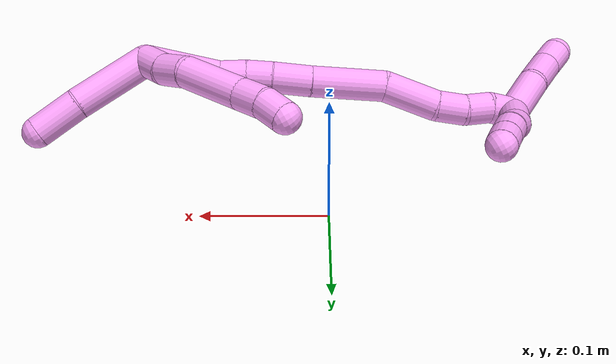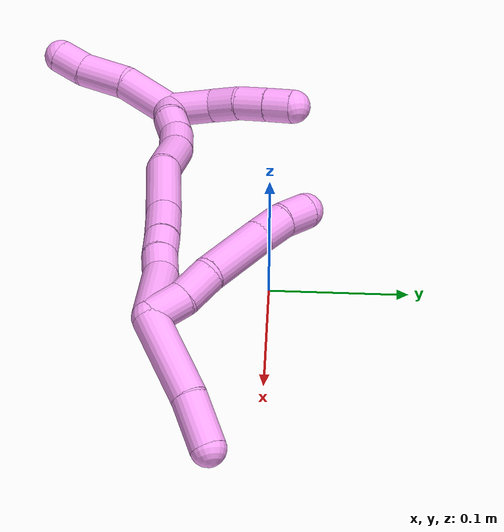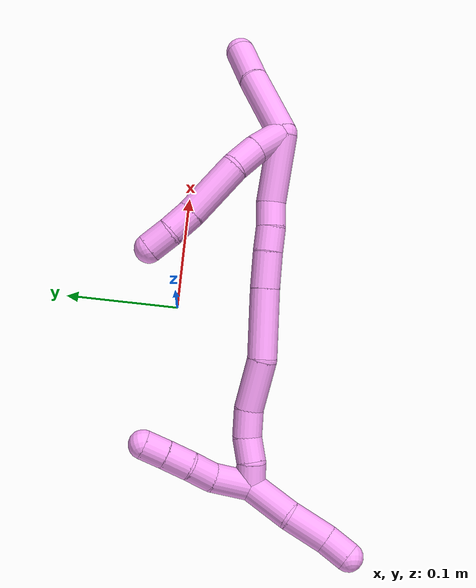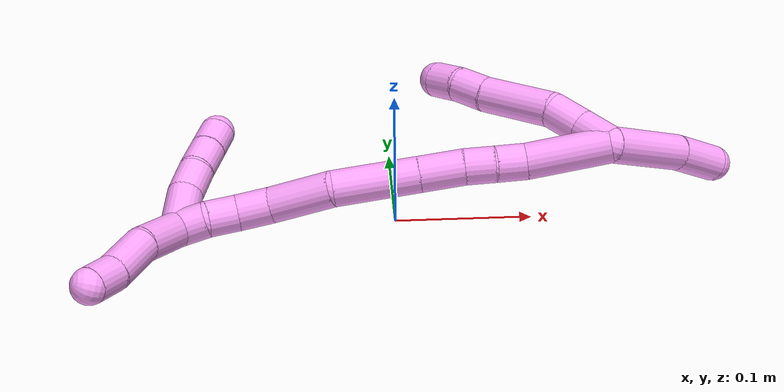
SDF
<sdf version="1.7">
 <world name="default">
  <model name="photoneo_s_sensor">
   <static>1</static>
   <pose>0 0 2 1.57079 1.57079 3.14159</pose>
   <link name="link">
    <inertial><mass>0.1</mass></inertial>
    <sensor name="sensor" type="depth">
     <update_rate>30</update_rate>
     <camera>
      <horizontal_fov>1.22</horizontal_fov>
      <image><width>1920</width><height>1200</height><format>B8G8R8</format></image>
      <clip><near>0.1</near><far>4</far></clip>
      <depth_camera><output>points</output></depth_camera>
     </camera>
     <plugin name="camera_plugin" filename="libgazebo_ros_depth_camera.so">
      <baseline>0.2</baseline>
      <alwaysOn>1</alwaysOn>
      <updateRate>0.0</updateRate>
      <cameraName>camera_ir</cameraName>
      <imageTopicName>/camera/color/image_raw</imageTopicName>
      <cameraInfoTopicName>/camera/color/camera_info</cameraInfoTopicName>
      <depthImageTopicName>/camera/depth/image_raw</depthImageTopicName>
      <depthImageCameraInfoTopicName>/camera/depth/camera_info</depthImageCameraInfoTopicName>
      <pointCloudTopicName>/camera/depth/points</pointCloudTopicName>
      <frameName>fr_optical</frameName>
      <pointCloudCutoff>0.1</pointCloudCutoff>
      <pointCloudCutoffMax>2.0</pointCloudCutoffMax>
      <distortionK1>0</distortionK1>
      <distortionK2>0</distortionK2>
      <distortionK3>0</distortionK3>
      <distortionT1>0</distortionT1>
      <distortionT2>0</distortionT2>
      <CxPrime>0</CxPrime>
      <Cx>0</Cx>
      <Cy>0</Cy>
      <focalLength>0</focalLength>
      <hackBaseline>0</hackBaseline>
     </plugin>
    </sensor>
   </link>
  </model>
  <model name="bin">
   <static>1</static>
   <link name="bottom">
    <collision name="collision-bottom">
     <pose>0 0 -0.01 0 -0 0</pose>
     <geometry><box><size>0.8 0.6 0.02</size></box></geometry>
     <surface>
      <friction><ode><mu>100</mu><mu2>100</mu2></ode></friction>
      <contact><collide_bitmask>65535</collide_bitmask></contact>
     </surface>
    </collision>
   </link>
   <link name="west_wall">
    <collision name="collision-west_wall">
     <pose>-0.41 0 0.1 0 -0 0</pose>
     <geometry><box><size>0.02 0.6 0.2</size></box></geometry>
     <surface>
      <friction><ode><mu>100</mu><mu2>100</mu2></ode></friction>
      <contact><collide_bitmask>65535</collide_bitmask></contact>
     </surface>
    </collision>
   </link>
   <link name="east_wall">
    <collision name="collision-east_wall">
     <pose>0.41 0 0.1 0 -0 0</pose>
     <geometry><box><size>0.02 0.6 0.2</size></box></geometry>
     <surface>
      <friction><ode><mu>100</mu><mu2>100</mu2></ode></friction>
      <contact><collide_bitmask>65535</collide_bitmask></contact>
     </surface>
    </collision>
   </link>
   <link name="south_wall">
    <collision name="collision-south_wall">
     <pose>0 -0.31 0.1 0 -0 0</pose>
     <geometry><box><size>0.8 0.02 0.2</size></box></geometry>
     <surface>
      <friction><ode><mu>100</mu><mu2>100</mu2></ode></friction>
      <contact><collide_bitmask>65535</collide_bitmask></contact>
     </surface>
    </collision>
   </link>
   <link name="north_wall">
    <collision name="collision-north_wall">
     <pose>0 0.31 0.1 0 -0 0</pose>
     <geometry><box><size>0.8 0.02 0.2</size></box></geometry>
     <surface>
      <friction><ode><mu>100</mu><mu2>100</mu2></ode></friction>
      <contact><collide_bitmask>65535</collide_bitmask></contact>
     </surface>
    </collision>
   </link>
  </model>
  <model name="4">
   <static>0</static>
   <link name="4">
    <collision name="collision-cylinder-e_1_2_8">
     <pose>-0.001742 0.012288 0.005237 -1.16793 -0.129713 0.085788</pose>
     <geometry><cylinder><radius>0.0125</radius><length>0.026941</length></cylinder></geometry>
     <surface>
      <friction><ode><mu>1.16</mu><mu2>1.16</mu2><slip1>0</slip1><slip2>0</slip2></ode></friction>
      <contact><ode><kp>1e+06</kp><kd>1</kd><max_vel>0</max_vel><min_depth>0.001</min_depth></ode></contact>
     </surface>
    </collision>
    <visual name="visual-cylinder-e_1_2_8">
     <pose>-0.001742 0.012288 0.005237 -1.16793 -0.129713 0.085788</pose>
     <geometry><cylinder><radius>0.0125</radius><length>0.026941</length></cylinder></geometry>
     <material><ambient>1 0.65098 0.996078 1</ambient></material>
    </visual>
    <collision name="collision-cylinder-e_2_8_9">
     <pose>-0.004379 0.03476 0.01775 -0.95044 -0.071348 0.036724</pose>
     <geometry><cylinder><radius>0.0125</radius><length>0.025095</length></cylinder></geometry>
     <surface>
      <friction><ode><mu>1.16</mu><mu2>1.16</mu2><slip1>0</slip1><slip2>0</slip2></ode></friction>
      <contact><ode><kp>1e+06</kp><kd>1</kd><max_vel>0</max_vel><min_depth>0.001</min_depth></ode></contact>
     </surface>
    </collision>
    <visual name="visual-cylinder-e_2_8_9">
     <pose>-0.004379 0.03476 0.01775 -0.95044 -0.071348 0.036724</pose>
     <geometry><cylinder><radius>0.0125</radius><length>0.025095</length></cylinder></geometry>
     <material><ambient>1 0.65098 0.996078 1</ambient></material>
    </visual>
    <collision name="collision-cylinder-e_3_9_10">
     <pose>-0.014527 0.06524 0.03911 -0.964136 -0.358359 0.188977</pose>
     <geometry><cylinder><radius>0.0125</radius><length>0.052762</length></cylinder></geometry>
     <surface>
      <friction><ode><mu>1.16</mu><mu2>1.16</mu2><slip1>0</slip1><slip2>0</slip2></ode></friction>
      <contact><ode><kp>1e+06</kp><kd>1</kd><max_vel>0</max_vel><min_depth>0.001</min_depth></ode></contact>
     </surface>
    </collision>
    <visual name="visual-cylinder-e_3_9_10">
     <pose>-0.014527 0.06524 0.03911 -0.964136 -0.358359 0.188977</pose>
     <geometry><cylinder><radius>0.0125</radius><length>0.052762</length></cylinder></geometry>
     <material><ambient>1 0.65098 0.996078 1</ambient></material>
    </visual>
    <collision name="collision-cylinder-e_4_10_11">
     <pose>-0.026759 0.09524 0.059026 -1.02972 -0.257393 0.146171</pose>
     <geometry><cylinder><radius>0.0125</radius><length>0.023412</length></cylinder></geometry>
     <surface>
      <friction><ode><mu>1.16</mu><mu2>1.16</mu2><slip1>0</slip1><slip2>0</slip2></ode></friction>
      <contact><ode><kp>1e+06</kp><kd>1</kd><max_vel>0</max_vel><min_depth>0.001</min_depth></ode></contact>
     </surface>
    </collision>
    <visual name="visual-cylinder-e_4_10_11">
     <pose>-0.026759 0.09524 0.059026 -1.02972 -0.257393 0.146171</pose>
     <geometry><cylinder><radius>0.0125</radius><length>0.023412</length></cylinder></geometry>
     <material><ambient>1 0.65098 0.996078 1</ambient></material>
    </visual>
    <collision name="collision-cylinder-e_5_11_6">
     <pose>-0.033939 0.114246 0.068667 -1.18203 -0.395694 0.267437</pose>
     <geometry><cylinder><radius>0.0125</radius><length>0.021789</length></cylinder></geometry>
     <surface>
      <friction><ode><mu>1.16</mu><mu2>1.16</mu2><slip1>0</slip1><slip2>0</slip2></ode></friction>
      <contact><ode><kp>1e+06</kp><kd>1</kd><max_vel>0</max_vel><min_depth>0.001</min_depth></ode></contact>
     </surface>
    </collision>
    <visual name="visual-cylinder-e_5_11_6">
     <pose>-0.033939 0.114246 0.068667 -1.18203 -0.395694 0.267437</pose>
     <geometry><cylinder><radius>0.0125</radius><length>0.021789</length></cylinder></geometry>
     <material><ambient>1 0.65098 0.996078 1</ambient></material>
    </visual>
    <collision name="collision-cylinder-e_1_2_12">
     <pose>0.001356 0.006715 -0.030776 -2.92677 0.043028 -0.393927</pose>
     <geometry><cylinder><radius>0.0125</radius><length>0.063058</length></cylinder></geometry>
     <surface>
      <friction><ode><mu>1.16</mu><mu2>1.16</mu2><slip1>0</slip1><slip2>0</slip2></ode></friction>
      <contact><ode><kp>1e+06</kp><kd>1</kd><max_vel>0</max_vel><min_depth>0.001</min_depth></ode></contact>
     </surface>
    </collision>
    <visual name="visual-cylinder-e_1_2_12">
     <pose>0.001356 0.006715 -0.030776 -2.92677 0.043028 -0.393927</pose>
     <geometry><cylinder><radius>0.0125</radius><length>0.063058</length></cylinder></geometry>
     <material><ambient>1 0.65098 0.996078 1</ambient></material>
    </visual>
    <collision name="collision-cylinder-e_2_12_5">
     <pose>0.001714 0.015893 -0.079831 -3.00768 -0.054061 0.766506</pose>
     <geometry><cylinder><radius>0.0125</radius><length>0.036942</length></cylinder></geometry>
     <surface>
      <friction><ode><mu>1.16</mu><mu2>1.16</mu2><slip1>0</slip1><slip2>0</slip2></ode></friction>
      <contact><ode><kp>1e+06</kp><kd>1</kd><max_vel>0</max_vel><min_depth>0.001</min_depth></ode></contact>
     </surface>
    </collision>
    <visual name="visual-cylinder-e_2_12_5">
     <pose>0.001714 0.015893 -0.079831 -3.00768 -0.054061 0.766506</pose>
     <geometry><cylinder><radius>0.0125</radius><length>0.036942</length></cylinder></geometry>
     <material><ambient>1 0.65098 0.996078 1</ambient></material>
    </visual>
    <collision name="collision-cylinder-e_1_2_13">
     <pose>-0.017691 0.00808 0.021654 -0.35716 -0.653301 0.122152</pose>
     <geometry><cylinder><radius>0.0125</radius><length>0.058211</length></cylinder></geometry>
     <surface>
      <friction><ode><mu>1.16</mu><mu2>1.16</mu2><slip1>0</slip1><slip2>0</slip2></ode></friction>
      <contact><ode><kp>1e+06</kp><kd>1</kd><max_vel>0</max_vel><min_depth>0.001</min_depth></ode></contact>
     </surface>
    </collision>
    <visual name="visual-cylinder-e_1_2_13">
     <pose>-0.017691 0.00808 0.021654 -0.35716 -0.653301 0.122152</pose>
     <geometry><cylinder><radius>0.0125</radius><length>0.058211</length></cylinder></geometry>
     <material><ambient>1 0.65098 0.996078 1</ambient></material>
    </visual>
    <collision name="collision-cylinder-e_2_13_14">
     <pose>-0.040036 0.017746 0.052629 -0.168415 -0.457422 0.039292</pose>
     <geometry><cylinder><radius>0.0125</radius><length>0.021079</length></cylinder></geometry>
     <surface>
      <friction><ode><mu>1.16</mu><mu2>1.16</mu2><slip1>0</slip1><slip2>0</slip2></ode></friction>
      <contact><ode><kp>1e+06</kp><kd>1</kd><max_vel>0</max_vel><min_depth>0.001</min_depth></ode></contact>
     </surface>
    </collision>
    <visual name="visual-cylinder-e_2_13_14">
     <pose>-0.040036 0.017746 0.052629 -0.168415 -0.457422 0.039292</pose>
     <geometry><cylinder><radius>0.0125</radius><length>0.021079</length></cylinder></geometry>
     <material><ambient>1 0.65098 0.996078 1</ambient></material>
    </visual>
    <collision name="collision-cylinder-e_3_14_15">
     <pose>-0.049766 0.021996 0.070594 -0.299086 -0.511358 0.078728</pose>
     <geometry><cylinder><radius>0.0125</radius><length>0.020742</length></cylinder></geometry>
     <surface>
      <friction><ode><mu>1.16</mu><mu2>1.16</mu2><slip1>0</slip1><slip2>0</slip2></ode></friction>
      <contact><ode><kp>1e+06</kp><kd>1</kd><max_vel>0</max_vel><min_depth>0.001</min_depth></ode></contact>
     </surface>
    </collision>
    <visual name="visual-cylinder-e_3_14_15">
     <pose>-0.049766 0.021996 0.070594 -0.299086 -0.511358 0.078728</pose>
     <geometry><cylinder><radius>0.0125</radius><length>0.020742</length></cylinder></geometry>
     <material><ambient>1 0.65098 0.996078 1</ambient></material>
    </visual>
    <collision name="collision-cylinder-e_4_15_16">
     <pose>-0.063281 0.027851 0.091809 -0.248549 -0.576865 0.074094</pose>
     <geometry><cylinder><radius>0.0125</radius><length>0.03095</length></cylinder></geometry>
     <surface>
      <friction><ode><mu>1.16</mu><mu2>1.16</mu2><slip1>0</slip1><slip2>0</slip2></ode></friction>
      <contact><ode><kp>1e+06</kp><kd>1</kd><max_vel>0</max_vel><min_depth>0.001</min_depth></ode></contact>
     </surface>
    </collision>
    <visual name="visual-cylinder-e_4_15_16">
     <pose>-0.063281 0.027851 0.091809 -0.248549 -0.576865 0.074094</pose>
     <geometry><cylinder><radius>0.0125</radius><length>0.03095</length></cylinder></geometry>
     <material><ambient>1 0.65098 0.996078 1</ambient></material>
    </visual>
    <collision name="collision-cylinder-e_5_16_17">
     <pose>-0.087317 0.036104 0.128979 -0.202965 -0.55573 0.058078</pose>
     <geometry><cylinder><radius>0.0125</radius><length>0.059124</length></cylinder></geometry>
     <surface>
      <friction><ode><mu>1.16</mu><mu2>1.16</mu2><slip1>0</slip1><slip2>0</slip2></ode></friction>
      <contact><ode><kp>1e+06</kp><kd>1</kd><max_vel>0</max_vel><min_depth>0.001</min_depth></ode></contact>
     </surface>
    </collision>
    <visual name="visual-cylinder-e_5_16_17">
     <pose>-0.087317 0.036104 0.128979 -0.202965 -0.55573 0.058078</pose>
     <geometry><cylinder><radius>0.0125</radius><length>0.059124</length></cylinder></geometry>
     <material><ambient>1 0.65098 0.996078 1</ambient></material>
    </visual>
    <collision name="collision-cylinder-e_6_17_18">
     <pose>-0.118063 0.048795 0.167622 -0.497583 -0.758667 0.201864</pose>
     <geometry><cylinder><radius>0.0125</radius><length>0.044045</length></cylinder></geometry>
     <surface>
      <friction><ode><mu>1.16</mu><mu2>1.16</mu2><slip1>0</slip1><slip2>0</slip2></ode></friction>
      <contact><ode><kp>1e+06</kp><kd>1</kd><max_vel>0</max_vel><min_depth>0.001</min_depth></ode></contact>
     </surface>
    </collision>
    <visual name="visual-cylinder-e_6_17_18">
     <pose>-0.118063 0.048795 0.167622 -0.497583 -0.758667 0.201864</pose>
     <geometry><cylinder><radius>0.0125</radius><length>0.044045</length></cylinder></geometry>
     <material><ambient>1 0.65098 0.996078 1</ambient></material>
    </visual>
    <collision name="collision-cylinder-e_7_18_19">
     <pose>-0.140362 0.058589 0.19102 -0.227462 -0.640009 0.07567</pose>
     <geometry><cylinder><radius>0.0125</radius><length>0.02394</length></cylinder></geometry>
     <surface>
      <friction><ode><mu>1.16</mu><mu2>1.16</mu2><slip1>0</slip1><slip2>0</slip2></ode></friction>
      <contact><ode><kp>1e+06</kp><kd>1</kd><max_vel>0</max_vel><min_depth>0.001</min_depth></ode></contact>
     </surface>
    </collision>
    <visual name="visual-cylinder-e_7_18_19">
     <pose>-0.140362 0.058589 0.19102 -0.227462 -0.640009 0.07567</pose>
     <geometry><cylinder><radius>0.0125</radius><length>0.02394</length></cylinder></geometry>
     <material><ambient>1 0.65098 0.996078 1</ambient></material>
    </visual>
    <collision name="collision-cylinder-e_8_19_20">
     <pose>-0.152467 0.060497 0.209849 0.027141 -0.481888 -0.006669</pose>
     <geometry><cylinder><radius>0.0125</radius><length>0.021393</length></cylinder></geometry>
     <surface>
      <friction><ode><mu>1.16</mu><mu2>1.16</mu2><slip1>0</slip1><slip2>0</slip2></ode></friction>
      <contact><ode><kp>1e+06</kp><kd>1</kd><max_vel>0</max_vel><min_depth>0.001</min_depth></ode></contact>
     </surface>
    </collision>
    <visual name="visual-cylinder-e_8_19_20">
     <pose>-0.152467 0.060497 0.209849 0.027141 -0.481888 -0.006669</pose>
     <geometry><cylinder><radius>0.0125</radius><length>0.021393</length></cylinder></geometry>
     <material><ambient>1 0.65098 0.996078 1</ambient></material>
    </visual>
    <collision name="collision-cylinder-e_9_20_1">
     <pose>-0.164254 0.0616 0.226857 -0.1787 -0.728408 0.068278</pose>
     <geometry><cylinder><radius>0.0125</radius><length>0.020517</length></cylinder></geometry>
     <surface>
      <friction><ode><mu>1.16</mu><mu2>1.16</mu2><slip1>0</slip1><slip2>0</slip2></ode></friction>
      <contact><ode><kp>1e+06</kp><kd>1</kd><max_vel>0</max_vel><min_depth>0.001</min_depth></ode></contact>
     </surface>
    </collision>
    <visual name="visual-cylinder-e_9_20_1">
     <pose>-0.164254 0.0616 0.226857 -0.1787 -0.728408 0.068278</pose>
     <geometry><cylinder><radius>0.0125</radius><length>0.020517</length></cylinder></geometry>
     <material><ambient>1 0.65098 0.996078 1</ambient></material>
    </visual>
    <collision name="collision-cylinder-e_1_1_21">
     <pose>-0.165921 0.078928 0.230366 -1.81768 0.303754 -0.387892</pose>
     <geometry><cylinder><radius>0.0125</radius><length>0.034512</length></cylinder></geometry>
     <surface>
      <friction><ode><mu>1.16</mu><mu2>1.16</mu2><slip1>0</slip1><slip2>0</slip2></ode></friction>
      <contact><ode><kp>1e+06</kp><kd>1</kd><max_vel>0</max_vel><min_depth>0.001</min_depth></ode></contact>
     </surface>
    </collision>
    <visual name="visual-cylinder-e_1_1_21">
     <pose>-0.165921 0.078928 0.230366 -1.81768 0.303754 -0.387892</pose>
     <geometry><cylinder><radius>0.0125</radius><length>0.034512</length></cylinder></geometry>
     <material><ambient>1 0.65098 0.996078 1</ambient></material>
    </visual>
    <collision name="collision-cylinder-e_2_21_22">
     <pose>-0.15496 0.103776 0.222478 -1.98117 0.539557 -0.798427</pose>
     <geometry><cylinder><radius>0.0125</radius><length>0.022577</length></cylinder></geometry>
     <surface>
      <friction><ode><mu>1.16</mu><mu2>1.16</mu2><slip1>0</slip1><slip2>0</slip2></ode></friction>
      <contact><ode><kp>1e+06</kp><kd>1</kd><max_vel>0</max_vel><min_depth>0.001</min_depth></ode></contact>
     </surface>
    </collision>
    <visual name="visual-cylinder-e_2_21_22">
     <pose>-0.15496 0.103776 0.222478 -1.98117 0.539557 -0.798427</pose>
     <geometry><cylinder><radius>0.0125</radius><length>0.022577</length></cylinder></geometry>
     <material><ambient>1 0.65098 0.996078 1</ambient></material>
    </visual>
    <collision name="collision-cylinder-e_3_22_23">
     <pose>-0.14514 0.122048 0.213909 -2.03528 0.365557 -0.581739</pose>
     <geometry><cylinder><radius>0.0125</radius><length>0.022494</length></cylinder></geometry>
     <surface>
      <friction><ode><mu>1.16</mu><mu2>1.16</mu2><slip1>0</slip1><slip2>0</slip2></ode></friction>
      <contact><ode><kp>1e+06</kp><kd>1</kd><max_vel>0</max_vel><min_depth>0.001</min_depth></ode></contact>
     </surface>
    </collision>
    <visual name="visual-cylinder-e_3_22_23">
     <pose>-0.14514 0.122048 0.213909 -2.03528 0.365557 -0.581739</pose>
     <geometry><cylinder><radius>0.0125</radius><length>0.022494</length></cylinder></geometry>
     <material><ambient>1 0.65098 0.996078 1</ambient></material>
    </visual>
    <collision name="collision-cylinder-e_4_23_4">
     <pose>-0.137792 0.140082 0.204911 -2.03176 0.33208 -0.528064</pose>
     <geometry><cylinder><radius>0.0125</radius><length>0.020416</length></cylinder></geometry>
     <surface>
      <friction><ode><mu>1.16</mu><mu2>1.16</mu2><slip1>0</slip1><slip2>0</slip2></ode></friction>
      <contact><ode><kp>1e+06</kp><kd>1</kd><max_vel>0</max_vel><min_depth>0.001</min_depth></ode></contact>
     </surface>
    </collision>
    <visual name="visual-cylinder-e_4_23_4">
     <pose>-0.137792 0.140082 0.204911 -2.03176 0.33208 -0.528064</pose>
     <geometry><cylinder><radius>0.0125</radius><length>0.020416</length></cylinder></geometry>
     <material><ambient>1 0.65098 0.996078 1</ambient></material>
    </visual>
    <collision name="collision-cylinder-e_1_1_24">
     <pose>-0.172277 0.049241 0.249592 0.734197 -0.058257 -0.022407</pose>
     <geometry><cylinder><radius>0.0125</radius><length>0.041025</length></cylinder></geometry>
     <surface>
      <friction><ode><mu>1.16</mu><mu2>1.16</mu2><slip1>0</slip1><slip2>0</slip2></ode></friction>
      <contact><ode><kp>1e+06</kp><kd>1</kd><max_vel>0</max_vel><min_depth>0.001</min_depth></ode></contact>
     </surface>
    </collision>
    <visual name="visual-cylinder-e_1_1_24">
     <pose>-0.172277 0.049241 0.249592 0.734197 -0.058257 -0.022407</pose>
     <geometry><cylinder><radius>0.0125</radius><length>0.041025</length></cylinder></geometry>
     <material><ambient>1 0.65098 0.996078 1</ambient></material>
    </visual>
    <collision name="collision-cylinder-e_2_24_25">
     <pose>-0.178034 0.021852 0.275538 0.904636 -0.256673 -0.125247</pose>
     <geometry><cylinder><radius>0.0125</radius><length>0.035949</length></cylinder></geometry>
     <surface>
      <friction><ode><mu>1.16</mu><mu2>1.16</mu2><slip1>0</slip1><slip2>0</slip2></ode></friction>
      <contact><ode><kp>1e+06</kp><kd>1</kd><max_vel>0</max_vel><min_depth>0.001</min_depth></ode></contact>
     </surface>
    </collision>
    <visual name="visual-cylinder-e_2_24_25">
     <pose>-0.178034 0.021852 0.275538 0.904636 -0.256673 -0.125247</pose>
     <geometry><cylinder><radius>0.0125</radius><length>0.035949</length></cylinder></geometry>
     <material><ambient>1 0.65098 0.996078 1</ambient></material>
    </visual>
    <collision name="collision-cylinder-e_3_25_3">
     <pose>-0.184206 0.000518 0.294719 0.737544 -0.140213 -0.054261</pose>
     <geometry><cylinder><radius>0.0125</radius><length>0.023025</length></cylinder></geometry>
     <surface>
      <friction><ode><mu>1.16</mu><mu2>1.16</mu2><slip1>0</slip1><slip2>0</slip2></ode></friction>
      <contact><ode><kp>1e+06</kp><kd>1</kd><max_vel>0</max_vel><min_depth>0.001</min_depth></ode></contact>
     </surface>
    </collision>
    <visual name="visual-cylinder-e_3_25_3">
     <pose>-0.184206 0.000518 0.294719 0.737544 -0.140213 -0.054261</pose>
     <geometry><cylinder><radius>0.0125</radius><length>0.023025</length></cylinder></geometry>
     <material><ambient>1 0.65098 0.996078 1</ambient></material>
    </visual>
    <collision name="collision-sphere-3">
     <pose>-0.185815 -0.007148 0.303157 0 -0 0</pose>
     <geometry><sphere><radius>0.0125</radius></sphere></geometry>
     <surface>
      <friction><ode><mu>1.16</mu><mu2>1.16</mu2><slip1>0</slip1><slip2>0</slip2></ode></friction>
      <contact><ode><kp>1e+06</kp><kd>1</kd><max_vel>0</max_vel><min_depth>0.001</min_depth></ode></contact>
     </surface>
    </collision>
    <visual name="visual-sphere-3">
     <pose>-0.185815 -0.007148 0.303157 0 -0 0</pose>
     <geometry><sphere><radius>0.0125</radius></sphere></geometry>
     <material><ambient>1 0.65098 0.996078 1</ambient></material>
    </visual>
    <collision name="collision-sphere-25">
     <pose>-0.182597 0.008183 0.286282 0 -0 0</pose>
     <geometry><sphere><radius>0.0125</radius></sphere></geometry>
     <surface>
      <friction><ode><mu>1.16</mu><mu2>1.16</mu2><slip1>0</slip1><slip2>0</slip2></ode></friction>
      <contact><ode><kp>1e+06</kp><kd>1</kd><max_vel>0</max_vel><min_depth>0.001</min_depth></ode></contact>
     </surface>
    </collision>
    <visual name="visual-sphere-25">
     <pose>-0.182597 0.008183 0.286282 0 -0 0</pose>
     <geometry><sphere><radius>0.0125</radius></sphere></geometry>
     <material><ambient>1 0.65098 0.996078 1</ambient></material>
    </visual>
    <collision name="collision-sphere-24">
     <pose>-0.173471 0.035521 0.264795 0 -0 0</pose>
     <geometry><sphere><radius>0.0125</radius></sphere></geometry>
     <surface>
      <friction><ode><mu>1.16</mu><mu2>1.16</mu2><slip1>0</slip1><slip2>0</slip2></ode></friction>
      <contact><ode><kp>1e+06</kp><kd>1</kd><max_vel>0</max_vel><min_depth>0.001</min_depth></ode></contact>
     </surface>
    </collision>
    <visual name="visual-sphere-24">
     <pose>-0.173471 0.035521 0.264795 0 -0 0</pose>
     <geometry><sphere><radius>0.0125</radius></sphere></geometry>
     <material><ambient>1 0.65098 0.996078 1</ambient></material>
    </visual>
    <collision name="collision-sphere-4">
     <pose>-0.134464 0.148725 0.200618 0 -0 0</pose>
     <geometry><sphere><radius>0.0125</radius></sphere></geometry>
     <surface>
      <friction><ode><mu>1.16</mu><mu2>1.16</mu2><slip1>0</slip1><slip2>0</slip2></ode></friction>
      <contact><ode><kp>1e+06</kp><kd>1</kd><max_vel>0</max_vel><min_depth>0.001</min_depth></ode></contact>
     </surface>
    </collision>
    <visual name="visual-sphere-4">
     <pose>-0.134464 0.148725 0.200618 0 -0 0</pose>
     <geometry><sphere><radius>0.0125</radius></sphere></geometry>
     <material><ambient>1 0.65098 0.996078 1</ambient></material>
    </visual>
    <collision name="collision-sphere-23">
     <pose>-0.14112 0.131439 0.209204 0 -0 0</pose>
     <geometry><sphere><radius>0.0125</radius></sphere></geometry>
     <surface>
      <friction><ode><mu>1.16</mu><mu2>1.16</mu2><slip1>0</slip1><slip2>0</slip2></ode></friction>
      <contact><ode><kp>1e+06</kp><kd>1</kd><max_vel>0</max_vel><min_depth>0.001</min_depth></ode></contact>
     </surface>
    </collision>
    <visual name="visual-sphere-23">
     <pose>-0.14112 0.131439 0.209204 0 -0 0</pose>
     <geometry><sphere><radius>0.0125</radius></sphere></geometry>
     <material><ambient>1 0.65098 0.996078 1</ambient></material>
    </visual>
    <collision name="collision-sphere-22">
     <pose>-0.149161 0.112656 0.218614 0 -0 0</pose>
     <geometry><sphere><radius>0.0125</radius></sphere></geometry>
     <surface>
      <friction><ode><mu>1.16</mu><mu2>1.16</mu2><slip1>0</slip1><slip2>0</slip2></ode></friction>
      <contact><ode><kp>1e+06</kp><kd>1</kd><max_vel>0</max_vel><min_depth>0.001</min_depth></ode></contact>
     </surface>
    </collision>
    <visual name="visual-sphere-22">
     <pose>-0.149161 0.112656 0.218614 0 -0 0</pose>
     <geometry><sphere><radius>0.0125</radius></sphere></geometry>
     <material><ambient>1 0.65098 0.996078 1</ambient></material>
    </visual>
    <collision name="collision-sphere-21">
     <pose>-0.16076 0.094895 0.226342 0 -0 0</pose>
     <geometry><sphere><radius>0.0125</radius></sphere></geometry>
     <surface>
      <friction><ode><mu>1.16</mu><mu2>1.16</mu2><slip1>0</slip1><slip2>0</slip2></ode></friction>
      <contact><ode><kp>1e+06</kp><kd>1</kd><max_vel>0</max_vel><min_depth>0.001</min_depth></ode></contact>
     </surface>
    </collision>
    <visual name="visual-sphere-21">
     <pose>-0.16076 0.094895 0.226342 0 -0 0</pose>
     <geometry><sphere><radius>0.0125</radius></sphere></geometry>
     <material><ambient>1 0.65098 0.996078 1</ambient></material>
    </visual>
    <collision name="collision-sphere-1">
     <pose>-0.171083 0.062961 0.23439 0 -0 0</pose>
     <geometry><sphere><radius>0.0125</radius></sphere></geometry>
     <surface>
      <friction><ode><mu>1.16</mu><mu2>1.16</mu2><slip1>0</slip1><slip2>0</slip2></ode></friction>
      <contact><ode><kp>1e+06</kp><kd>1</kd><max_vel>0</max_vel><min_depth>0.001</min_depth></ode></contact>
     </surface>
    </collision>
    <visual name="visual-sphere-1">
     <pose>-0.171083 0.062961 0.23439 0 -0 0</pose>
     <geometry><sphere><radius>0.0125</radius></sphere></geometry>
     <material><ambient>1 0.65098 0.996078 1</ambient></material>
    </visual>
    <collision name="collision-sphere-6">
     <pose>-0.038138 0.123549 0.072478 0 -0 0</pose>
     <geometry><sphere><radius>0.0125</radius></sphere></geometry>
     <surface>
      <friction><ode><mu>1.16</mu><mu2>1.16</mu2><slip1>0</slip1><slip2>0</slip2></ode></friction>
      <contact><ode><kp>1e+06</kp><kd>1</kd><max_vel>0</max_vel><min_depth>0.001</min_depth></ode></contact>
     </surface>
    </collision>
    <visual name="visual-sphere-6">
     <pose>-0.038138 0.123549 0.072478 0 -0 0</pose>
     <geometry><sphere><radius>0.0125</radius></sphere></geometry>
     <material><ambient>1 0.65098 0.996078 1</ambient></material>
    </visual>
    <collision name="collision-sphere-11">
     <pose>-0.029739 0.104943 0.064857 0 -0 0</pose>
     <geometry><sphere><radius>0.0125</radius></sphere></geometry>
     <surface>
      <friction><ode><mu>1.16</mu><mu2>1.16</mu2><slip1>0</slip1><slip2>0</slip2></ode></friction>
      <contact><ode><kp>1e+06</kp><kd>1</kd><max_vel>0</max_vel><min_depth>0.001</min_depth></ode></contact>
     </surface>
    </collision>
    <visual name="visual-sphere-11">
     <pose>-0.029739 0.104943 0.064857 0 -0 0</pose>
     <geometry><sphere><radius>0.0125</radius></sphere></geometry>
     <material><ambient>1 0.65098 0.996078 1</ambient></material>
    </visual>
    <collision name="collision-sphere-10">
     <pose>-0.023779 0.085537 0.053195 0 -0 0</pose>
     <geometry><sphere><radius>0.0125</radius></sphere></geometry>
     <surface>
      <friction><ode><mu>1.16</mu><mu2>1.16</mu2><slip1>0</slip1><slip2>0</slip2></ode></friction>
      <contact><ode><kp>1e+06</kp><kd>1</kd><max_vel>0</max_vel><min_depth>0.001</min_depth></ode></contact>
     </surface>
    </collision>
    <visual name="visual-sphere-10">
     <pose>-0.023779 0.085537 0.053195 0 -0 0</pose>
     <geometry><sphere><radius>0.0125</radius></sphere></geometry>
     <material><ambient>1 0.65098 0.996078 1</ambient></material>
    </visual>
    <collision name="collision-sphere-9">
     <pose>-0.005274 0.044944 0.025025 0 -0 0</pose>
     <geometry><sphere><radius>0.0125</radius></sphere></geometry>
     <surface>
      <friction><ode><mu>1.16</mu><mu2>1.16</mu2><slip1>0</slip1><slip2>0</slip2></ode></friction>
      <contact><ode><kp>1e+06</kp><kd>1</kd><max_vel>0</max_vel><min_depth>0.001</min_depth></ode></contact>
     </surface>
    </collision>
    <visual name="visual-sphere-9">
     <pose>-0.005274 0.044944 0.025025 0 -0 0</pose>
     <geometry><sphere><radius>0.0125</radius></sphere></geometry>
     <material><ambient>1 0.65098 0.996078 1</ambient></material>
    </visual>
    <collision name="collision-sphere-2">
     <geometry><sphere><radius>0.0125</radius></sphere></geometry>
     <surface>
      <friction><ode><mu>1.16</mu><mu2>1.16</mu2><slip1>0</slip1><slip2>0</slip2></ode></friction>
      <contact><ode><kp>1e+06</kp><kd>1</kd><max_vel>0</max_vel><min_depth>0.001</min_depth></ode></contact>
     </surface>
    </collision>
    <visual name="visual-sphere-2">
     <geometry><sphere><radius>0.0125</radius></sphere></geometry>
     <material><ambient>1 0.65098 0.996078 1</ambient></material>
    </visual>
    <collision name="collision-sphere-19">
     <pose>-0.14751 0.060754 0.200374 0 -0 0</pose>
     <geometry><sphere><radius>0.0125</radius></sphere></geometry>
     <surface>
      <friction><ode><mu>1.16</mu><mu2>1.16</mu2><slip1>0</slip1><slip2>0</slip2></ode></friction>
      <contact><ode><kp>1e+06</kp><kd>1</kd><max_vel>0</max_vel><min_depth>0.001</min_depth></ode></contact>
     </surface>
    </collision>
    <visual name="visual-sphere-19">
     <pose>-0.14751 0.060754 0.200374 0 -0 0</pose>
     <geometry><sphere><radius>0.0125</radius></sphere></geometry>
     <material><ambient>1 0.65098 0.996078 1</ambient></material>
    </visual>
    <collision name="collision-sphere-8">
     <pose>-0.003485 0.024576 0.010474 0 -0 0</pose>
     <geometry><sphere><radius>0.0125</radius></sphere></geometry>
     <surface>
      <friction><ode><mu>1.16</mu><mu2>1.16</mu2><slip1>0</slip1><slip2>0</slip2></ode></friction>
      <contact><ode><kp>1e+06</kp><kd>1</kd><max_vel>0</max_vel><min_depth>0.001</min_depth></ode></contact>
     </surface>
    </collision>
    <visual name="visual-sphere-8">
     <pose>-0.003485 0.024576 0.010474 0 -0 0</pose>
     <geometry><sphere><radius>0.0125</radius></sphere></geometry>
     <material><ambient>1 0.65098 0.996078 1</ambient></material>
    </visual>
    <collision name="collision-sphere-12">
     <pose>0.002712 0.01343 -0.061552 0 -0 0</pose>
     <geometry><sphere><radius>0.0125</radius></sphere></geometry>
     <surface>
      <friction><ode><mu>1.16</mu><mu2>1.16</mu2><slip1>0</slip1><slip2>0</slip2></ode></friction>
      <contact><ode><kp>1e+06</kp><kd>1</kd><max_vel>0</max_vel><min_depth>0.001</min_depth></ode></contact>
     </surface>
    </collision>
    <visual name="visual-sphere-12">
     <pose>0.002712 0.01343 -0.061552 0 -0 0</pose>
     <geometry><sphere><radius>0.0125</radius></sphere></geometry>
     <material><ambient>1 0.65098 0.996078 1</ambient></material>
    </visual>
    <collision name="collision-sphere-5">
     <pose>0.000716 0.018355 -0.098109 0 -0 0</pose>
     <geometry><sphere><radius>0.0125</radius></sphere></geometry>
     <surface>
      <friction><ode><mu>1.16</mu><mu2>1.16</mu2><slip1>0</slip1><slip2>0</slip2></ode></friction>
      <contact><ode><kp>1e+06</kp><kd>1</kd><max_vel>0</max_vel><min_depth>0.001</min_depth></ode></contact>
     </surface>
    </collision>
    <visual name="visual-sphere-5">
     <pose>0.000716 0.018355 -0.098109 0 -0 0</pose>
     <geometry><sphere><radius>0.0125</radius></sphere></geometry>
     <material><ambient>1 0.65098 0.996078 1</ambient></material>
    </visual>
    <collision name="collision-sphere-13">
     <pose>-0.035381 0.016161 0.043307 0 -0 0</pose>
     <geometry><sphere><radius>0.0125</radius></sphere></geometry>
     <surface>
      <friction><ode><mu>1.16</mu><mu2>1.16</mu2><slip1>0</slip1><slip2>0</slip2></ode></friction>
      <contact><ode><kp>1e+06</kp><kd>1</kd><max_vel>0</max_vel><min_depth>0.001</min_depth></ode></contact>
     </surface>
    </collision>
    <visual name="visual-sphere-13">
     <pose>-0.035381 0.016161 0.043307 0 -0 0</pose>
     <geometry><sphere><radius>0.0125</radius></sphere></geometry>
     <material><ambient>1 0.65098 0.996078 1</ambient></material>
    </visual>
    <collision name="collision-sphere-14">
     <pose>-0.044691 0.019331 0.061952 0 -0 0</pose>
     <geometry><sphere><radius>0.0125</radius></sphere></geometry>
     <surface>
      <friction><ode><mu>1.16</mu><mu2>1.16</mu2><slip1>0</slip1><slip2>0</slip2></ode></friction>
      <contact><ode><kp>1e+06</kp><kd>1</kd><max_vel>0</max_vel><min_depth>0.001</min_depth></ode></contact>
     </surface>
    </collision>
    <visual name="visual-sphere-14">
     <pose>-0.044691 0.019331 0.061952 0 -0 0</pose>
     <geometry><sphere><radius>0.0125</radius></sphere></geometry>
     <material><ambient>1 0.65098 0.996078 1</ambient></material>
    </visual>
    <collision name="collision-sphere-15">
     <pose>-0.054841 0.02466 0.079237 0 -0 0</pose>
     <geometry><sphere><radius>0.0125</radius></sphere></geometry>
     <surface>
      <friction><ode><mu>1.16</mu><mu2>1.16</mu2><slip1>0</slip1><slip2>0</slip2></ode></friction>
      <contact><ode><kp>1e+06</kp><kd>1</kd><max_vel>0</max_vel><min_depth>0.001</min_depth></ode></contact>
     </surface>
    </collision>
    <visual name="visual-sphere-15">
     <pose>-0.054841 0.02466 0.079237 0 -0 0</pose>
     <geometry><sphere><radius>0.0125</radius></sphere></geometry>
     <material><ambient>1 0.65098 0.996078 1</ambient></material>
    </visual>
    <collision name="collision-sphere-16">
     <pose>-0.071721 0.031042 0.104381 0 -0 0</pose>
     <geometry><sphere><radius>0.0125</radius></sphere></geometry>
     <surface>
      <friction><ode><mu>1.16</mu><mu2>1.16</mu2><slip1>0</slip1><slip2>0</slip2></ode></friction>
      <contact><ode><kp>1e+06</kp><kd>1</kd><max_vel>0</max_vel><min_depth>0.001</min_depth></ode></contact>
     </surface>
    </collision>
    <visual name="visual-sphere-16">
     <pose>-0.071721 0.031042 0.104381 0 -0 0</pose>
     <geometry><sphere><radius>0.0125</radius></sphere></geometry>
     <material><ambient>1 0.65098 0.996078 1</ambient></material>
    </visual>
    <collision name="collision-sphere-17">
     <pose>-0.102912 0.041166 0.153577 0 -0 0</pose>
     <geometry><sphere><radius>0.0125</radius></sphere></geometry>
     <surface>
      <friction><ode><mu>1.16</mu><mu2>1.16</mu2><slip1>0</slip1><slip2>0</slip2></ode></friction>
      <contact><ode><kp>1e+06</kp><kd>1</kd><max_vel>0</max_vel><min_depth>0.001</min_depth></ode></contact>
     </surface>
    </collision>
    <visual name="visual-sphere-17">
     <pose>-0.102912 0.041166 0.153577 0 -0 0</pose>
     <geometry><sphere><radius>0.0125</radius></sphere></geometry>
     <material><ambient>1 0.65098 0.996078 1</ambient></material>
    </visual>
    <collision name="collision-sphere-18">
     <pose>-0.133213 0.056424 0.181667 0 -0 0</pose>
     <geometry><sphere><radius>0.0125</radius></sphere></geometry>
     <surface>
      <friction><ode><mu>1.16</mu><mu2>1.16</mu2><slip1>0</slip1><slip2>0</slip2></ode></friction>
      <contact><ode><kp>1e+06</kp><kd>1</kd><max_vel>0</max_vel><min_depth>0.001</min_depth></ode></contact>
     </surface>
    </collision>
    <visual name="visual-sphere-18">
     <pose>-0.133213 0.056424 0.181667 0 -0 0</pose>
     <geometry><sphere><radius>0.0125</radius></sphere></geometry>
     <material><ambient>1 0.65098 0.996078 1</ambient></material>
    </visual>
    <collision name="collision-sphere-20">
     <pose>-0.157425 0.060239 0.219323 0 -0 0</pose>
     <geometry><sphere><radius>0.0125</radius></sphere></geometry>
     <surface>
      <friction><ode><mu>1.16</mu><mu2>1.16</mu2><slip1>0</slip1><slip2>0</slip2></ode></friction>
      <contact><ode><kp>1e+06</kp><kd>1</kd><max_vel>0</max_vel><min_depth>0.001</min_depth></ode></contact>
     </surface>
    </collision>
    <visual name="visual-sphere-20">
     <pose>-0.157425 0.060239 0.219323 0 -0 0</pose>
     <geometry><sphere><radius>0.0125</radius></sphere></geometry>
     <material><ambient>1 0.65098 0.996078 1</ambient></material>
    </visual>
    <inertial>
     <pose>-0.080496 0.045696 0.113252 0 -0 0</pose>
     <mass>0.75</mass>
     <inertia><ixx>0.0001</ixx><ixy>0</ixy><ixz>0</ixz><iyy>6.9e-05</iyy><iyz>0</iyz><izz>2.2e-05</izz></inertia>
    </inertial>
   </link>
   <pose>0.14198 -0.074059 0.097154 0.156446 -1.12917 0.107988</pose>
  </model>
 </world>
</sdf>
